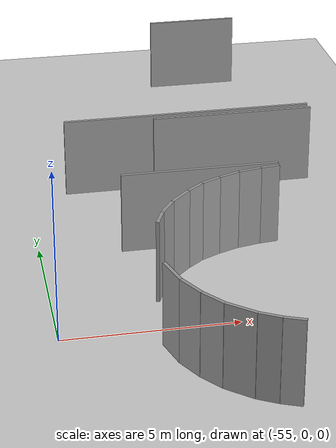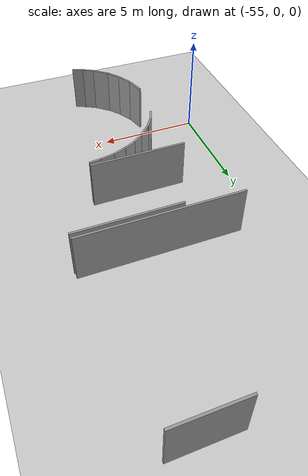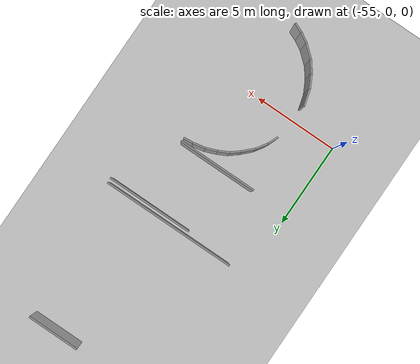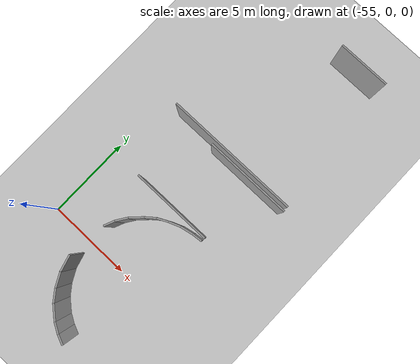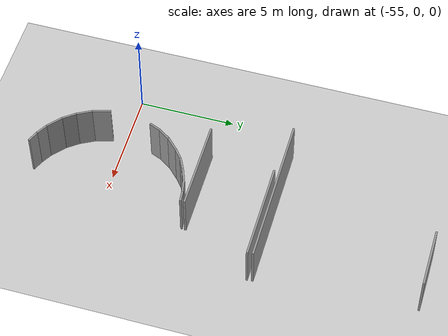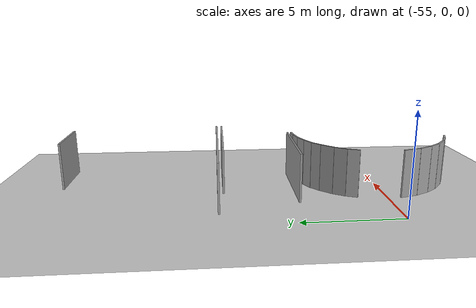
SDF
<sdf version="1.6">
 <world name="default">
  <model name="ground_plane">
   <static>1</static>
   <link name="link">
    <collision name="collision">
     <geometry><plane><normal>0 0 1</normal><size>100 100</size></plane></geometry>
     <surface><friction><ode><mu>100</mu><mu2>50</mu2></ode></friction></surface>
    </collision>
    <visual name="visual">
     <cast_shadows>0</cast_shadows>
     <geometry><plane><normal>0 0 1</normal><size>100 100</size></plane></geometry>
     <material>
      <script><uri>file://media/materials/scripts/gazebo.material</uri><name>Gazebo/Grey</name></script>
     </material>
    </visual>
   </link>
  </model>
  <model name="50041185">
   <static>1</static>
   <link name="Wall_114">
    <collision name="Wall_114_Collision">
     <geometry><box><size>0.590144803214 0.1 2.5</size></box></geometry>
     <pose>0.295072401607 0 1.25 0 0 0</pose>
    </collision>
    <visual name="Wall_114_Visual">
     <pose>0.295072401607 0 1.25 0 0 0</pose>
     <geometry><box><size>0.590144803214 0.1 2.5</size></box></geometry>
     <material>
      <script><uri>file://media/materials/scripts/gazebo.material</uri><name>Gazebo/Grey</name></script>
      <ambient>1 1 1 1</ambient>
     </material>
    </visual>
    <pose>22.3267072535 -20.884734173 0 0 0 2.7423284768</pose>
   </link>
   <link name="Wall_115">
    <collision name="Wall_115_Collision">
     <geometry><box><size>0.627866545625 0.1 2.5</size></box></geometry>
     <pose>0.313933272813 0 1.25 0 0 0</pose>
    </collision>
    <visual name="Wall_115_Visual">
     <pose>0.313933272813 0 1.25 0 0 0</pose>
     <geometry><box><size>0.627866545625 0.1 2.5</size></box></geometry>
     <material>
      <script><uri>file://media/materials/scripts/gazebo.material</uri><name>Gazebo/Grey</name></script>
      <ambient>1 1 1 1</ambient>
     </material>
    </visual>
    <pose>21.7829789397 -20.6553209878 0 0 0 2.61752529452</pose>
   </link>
   <link name="Wall_116">
    <collision name="Wall_116_Collision">
     <geometry><box><size>0.914398003552 0.1 2.5</size></box></geometry>
     <pose>0.457199001776 0 1.25 0 0 0</pose>
    </collision>
    <visual name="Wall_116_Visual">
     <pose>0.457199001776 0 1.25 0 0 0</pose>
     <geometry><box><size>0.914398003552 0.1 2.5</size></box></geometry>
     <material>
      <script><uri>file://media/materials/scripts/gazebo.material</uri><name>Gazebo/Grey</name></script>
      <ambient>1 1 1 1</ambient>
     </material>
    </visual>
    <pose>21.2393777247 -20.341132958 0 0 0 2.43224271622</pose>
   </link>
   <link name="Wall_117">
    <collision name="Wall_117_Collision">
     <geometry><box><size>0.754623319782 0.1 2.5</size></box></geometry>
     <pose>0.377311659891 0 1.25 0 0 0</pose>
    </collision>
    <visual name="Wall_117_Visual">
     <pose>0.377311659891 0 1.25 0 0 0</pose>
     <geometry><box><size>0.754623319782 0.1 2.5</size></box></geometry>
     <material>
      <script><uri>file://media/materials/scripts/gazebo.material</uri><name>Gazebo/Grey</name></script>
      <ambient>1 1 1 1</ambient>
     </material>
    </visual>
    <pose>20.5455458254 -19.7455483674 0 0 0 2.22012503249</pose>
   </link>
   <link name="Wall_118">
    <collision name="Wall_118_Collision">
     <geometry><box><size>0.829820080957 0.1 2.5</size></box></geometry>
     <pose>0.414910040478 0 1.25 0 0 0</pose>
    </collision>
    <visual name="Wall_118_Visual">
     <pose>0.414910040478 0 1.25 0 0 0</pose>
     <geometry><box><size>0.829820080957 0.1 2.5</size></box></geometry>
     <material>
      <script><uri>file://media/materials/scripts/gazebo.material</uri><name>Gazebo/Grey</name></script>
      <ambient>1 1 1 1</ambient>
     </material>
    </visual>
    <pose>20.0892614294 -19.144498532 0 0 0 2.06102394279</pose>
   </link>
   <link name="Wall_119">
    <collision name="Wall_119_Collision">
     <geometry><box><size>0.955810927588 0.1 2.5</size></box></geometry>
     <pose>0.477905463794 0 1.25 0 0 0</pose>
    </collision>
    <visual name="Wall_119_Visual">
     <pose>0.477905463794 0 1.25 0 0 0</pose>
     <geometry><box><size>0.955810927588 0.1 2.5</size></box></geometry>
     <material>
      <script><uri>file://media/materials/scripts/gazebo.material</uri><name>Gazebo/Grey</name></script>
      <ambient>1 1 1 1</ambient>
     </material>
    </visual>
    <pose>19.6985599715 -18.4124099188 0 0 0 1.84757994985</pose>
   </link>
   <link name="Wall_123">
    <collision name="Wall_123_Collision">
     <geometry><box><size>0.631866746119 0.1 2.5</size></box></geometry>
     <pose>0.31593337306 0 1.25 0 0 0</pose>
    </collision>
    <visual name="Wall_123_Visual">
     <pose>0.31593337306 0 1.25 0 0 0</pose>
     <geometry><box><size>0.631866746119 0.1 2.5</size></box></geometry>
     <material>
      <script><uri>file://media/materials/scripts/gazebo.material</uri><name>Gazebo/Grey</name></script>
      <ambient>1 1 1 1</ambient>
     </material>
    </visual>
    <pose>19.655600605 -15.3187000343 0 0 0 1.17493757532</pose>
   </link>
   <link name="Wall_124">
    <collision name="Wall_124_Collision">
     <geometry><box><size>0.698248706192 0.1 2.5</size></box></geometry>
     <pose>0.349124353096 0 1.25 0 0 0</pose>
    </collision>
    <visual name="Wall_124_Visual">
     <pose>0.349124353096 0 1.25 0 0 0</pose>
     <geometry><box><size>0.698248706192 0.1 2.5</size></box></geometry>
     <material>
      <script><uri>file://media/materials/scripts/gazebo.material</uri><name>Gazebo/Grey</name></script>
      <ambient>1 1 1 1</ambient>
     </material>
    </visual>
    <pose>19.8992488466 -14.7356982168 0 0 0 0.983096631154</pose>
   </link>
   <link name="Wall_125">
    <collision name="Wall_125_Collision">
     <geometry><box><size>0.802021167219 0.1 2.5</size></box></geometry>
     <pose>0.40101058361 0 1.25 0 0 0</pose>
    </collision>
    <visual name="Wall_125_Visual">
     <pose>0.40101058361 0 1.25 0 0 0</pose>
     <geometry><box><size>0.802021167219 0.1 2.5</size></box></geometry>
     <material>
      <script><uri>file://media/materials/scripts/gazebo.material</uri><name>Gazebo/Grey</name></script>
      <ambient>1 1 1 1</ambient>
     </material>
    </visual>
    <pose>20.2863915403 -14.1546028801 0 0 0 0.784725819259</pose>
   </link>
   <link name="Wall_126">
    <collision name="Wall_126_Collision">
     <geometry><box><size>0.61935977103 0.1 2.5</size></box></geometry>
     <pose>0.309679885515 0 1.25 0 0 0</pose>
    </collision>
    <visual name="Wall_126_Visual">
     <pose>0.309679885515 0 1.25 0 0 0</pose>
     <geometry><box><size>0.61935977103 0.1 2.5</size></box></geometry>
     <material>
      <script><uri>file://media/materials/scripts/gazebo.material</uri><name>Gazebo/Grey</name></script>
      <ambient>1 1 1 1</ambient>
     </material>
    </visual>
    <pose>20.8538873143 -13.5878696984 0 0 0 0.688169622149</pose>
   </link>
   <link name="Wall_127">
    <collision name="Wall_127_Collision">
     <geometry><box><size>0.637011088693 0.1 2.5</size></box></geometry>
     <pose>0.318505544346 0 1.25 0 0 0</pose>
    </collision>
    <visual name="Wall_127_Visual">
     <pose>0.318505544346 0 1.25 0 0 0</pose>
     <geometry><box><size>0.637011088693 0.1 2.5</size></box></geometry>
     <material>
      <script><uri>file://media/materials/scripts/gazebo.material</uri><name>Gazebo/Grey</name></script>
      <ambient>1 1 1 1</ambient>
     </material>
    </visual>
    <pose>21.3322868872 -13.1944991675 0 0 0 0.466235271647</pose>
   </link>
   <link name="Wall_128">
    <collision name="Wall_128_Collision">
     <geometry><box><size>0.674024667496 0.1 2.5</size></box></geometry>
     <pose>0.337012333748 0 1.25 0 0 0</pose>
    </collision>
    <visual name="Wall_128_Visual">
     <pose>0.337012333748 0 1.25 0 0 0</pose>
     <geometry><box><size>0.674024667496 0.1 2.5</size></box></geometry>
     <material>
      <script><uri>file://media/materials/scripts/gazebo.material</uri><name>Gazebo/Grey</name></script>
      <ambient>1 1 1 1</ambient>
     </material>
    </visual>
    <pose>21.9013078458 -12.9081457568 0 0 0 0.375323987763</pose>
   </link>
   <link name="Wall_129">
    <collision name="Wall_129_Collision">
     <geometry><box><size>0.714682406531 0.1 2.5</size></box></geometry>
     <pose>0.357341203265 0 1.25 0 0 0</pose>
    </collision>
    <visual name="Wall_129_Visual">
     <pose>0.357341203265 0 1.25 0 0 0</pose>
     <geometry><box><size>0.714682406531 0.1 2.5</size></box></geometry>
     <material>
      <script><uri>file://media/materials/scripts/gazebo.material</uri><name>Gazebo/Grey</name></script>
      <ambient>1 1 1 1</ambient>
     </material>
    </visual>
    <pose>22.5284129183 -12.6610658498 0 0 0 0.199069665429</pose>
   </link>
   <link name="Wall_130">
    <collision name="Wall_130_Collision">
     <geometry><box><size>0.562177383388 0.1 2.5</size></box></geometry>
     <pose>0.281088691694 0 1.25 0 0 0</pose>
    </collision>
    <visual name="Wall_130_Visual">
     <pose>0.281088691694 0 1.25 0 0 0</pose>
     <geometry><box><size>0.562177383388 0.1 2.5</size></box></geometry>
     <material>
      <script><uri>file://media/materials/scripts/gazebo.material</uri><name>Gazebo/Grey</name></script>
      <ambient>1 1 1 1</ambient>
     </material>
    </visual>
    <pose>23.2289810496 -12.5197320759 0 0 0 0.102368187012</pose>
   </link>
   <link name="Wall_275">
    <collision name="Wall_275_Collision">
     <geometry><box><size>3.05646996022 0.1 2.5</size></box></geometry>
     <pose>1.52823498011 0 1.25 0 0 0</pose>
    </collision>
    <visual name="Wall_275_Visual">
     <pose>1.52823498011 0 1.25 0 0 0</pose>
     <geometry><box><size>3.05646996022 0.1 2.5</size></box></geometry>
     <material>
      <script><uri>file://media/materials/scripts/gazebo.material</uri><name>Gazebo/Grey</name></script>
      <ambient>1 1 1 1</ambient>
     </material>
    </visual>
    <pose>22.1253828849 -0.0143621550859 0 0 0 0.0</pose>
   </link>
   <link name="Wall_279">
    <collision name="Wall_279_Collision">
     <geometry><box><size>7.83627380681 0.1 2.5</size></box></geometry>
     <pose>3.91813690341 0 1.25 0 0 0</pose>
    </collision>
    <visual name="Wall_279_Visual">
     <pose>3.91813690341 0 1.25 0 0 0</pose>
     <geometry><box><size>7.83627380681 0.1 2.5</size></box></geometry>
     <material>
      <script><uri>file://media/materials/scripts/gazebo.material</uri><name>Gazebo/Grey</name></script>
      <ambient>1 1 1 1</ambient>
     </material>
    </visual>
    <pose>25.7863343459 -8.22023665781 0 0 0 -3.14081412808</pose>
   </link>
   <link name="Wall_390">
    <collision name="Wall_390_Collision">
     <geometry><box><size>5.07276401581 0.1 2.5</size></box></geometry>
     <pose>2.53638200791 0 1.25 0 0 0</pose>
    </collision>
    <visual name="Wall_390_Visual">
     <pose>2.53638200791 0 1.25 0 0 0</pose>
     <geometry><box><size>5.07276401581 0.1 2.5</size></box></geometry>
     <material>
      <script><uri>file://media/materials/scripts/gazebo.material</uri><name>Gazebo/Grey</name></script>
      <ambient>1 1 1 1</ambient>
     </material>
    </visual>
    <pose>20.7416591467 -8.50392099544 0 0 0 0.0</pose>
   </link>
   <link name="Wall_402">
    <collision name="Wall_402_Collision">
     <geometry><box><size>4.6835877426 0.1 2.5</size></box></geometry>
     <pose>2.3417938713 0 1.25 0 0 0</pose>
    </collision>
    <visual name="Wall_402_Visual">
     <pose>2.3417938713 0 1.25 0 0 0</pose>
     <geometry><box><size>4.6835877426 0.1 2.5</size></box></geometry>
     <material>
      <script><uri>file://media/materials/scripts/gazebo.material</uri><name>Gazebo/Grey</name></script>
      <ambient>1 1 1 1</ambient>
     </material>
    </visual>
    <pose>23.806644721 -12.2539686575 0 0 0 3.14159265359</pose>
   </link>
   <pose>-71.7 16.7921910548 0 0 0 0</pose>
  </model>
 </world>
</sdf>
